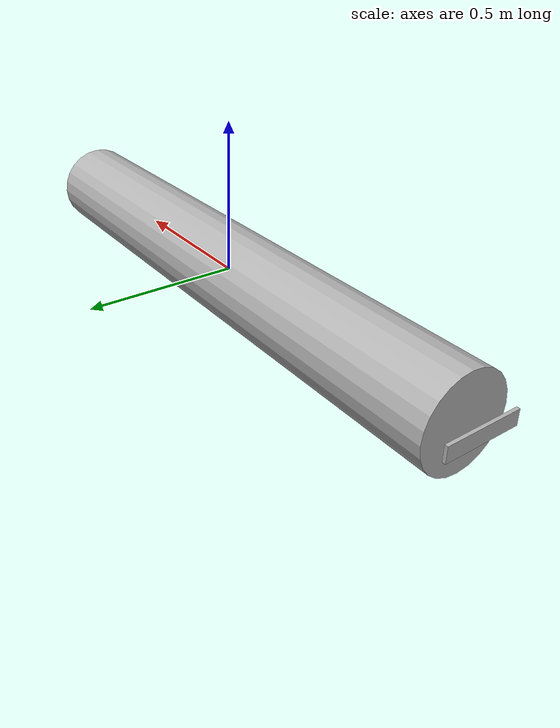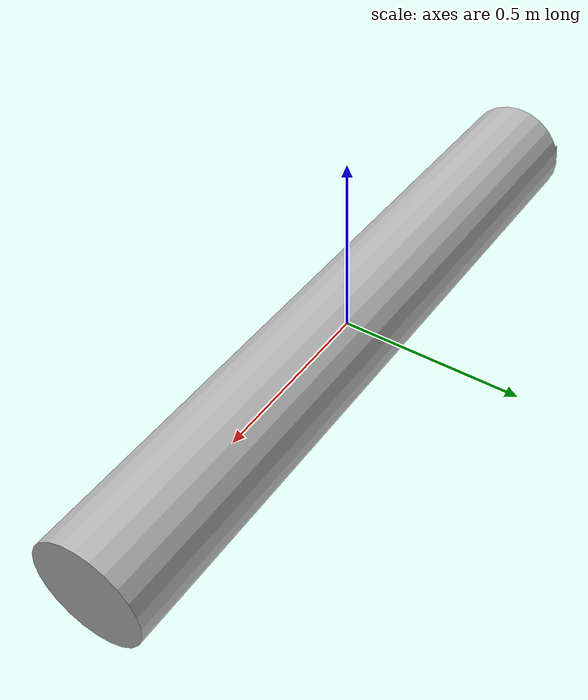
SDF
<?xml version="1.0" ?>
<sdf version="1.6">
  <world name="thruster">
    <plugin
      filename="gz-sim-apply-link-wrench-system"
      name="gz::sim::systems::ApplyLinkWrench">
    </plugin>

    <physics name="fast" type="none">
      <!-- Zero to run as fast as possible -->
      <real_time_factor>0</real_time_factor>
    </physics>

    <!-- prevent sinking -->
    <gravity>0 0 0</gravity>

    <plugin
      filename="gz-sim-physics-system"
      name="gz::sim::systems::Physics">
    </plugin>
    <plugin
      filename="gz-sim-scene-broadcaster-system"
      name="gz::sim::systems::SceneBroadcaster">
    </plugin>

    <light type="directional" name="sun">
      <cast_shadows>true</cast_shadows>
      <pose>0 0 10 0 0 0</pose>
      <diffuse>1 1 1 1</diffuse>
      <specular>0.5 0.5 0.5 1</specular>
      <attenuation>
        <range>1000</range>
        <constant>0.9</constant>
        <linear>0.01</linear>
        <quadratic>0.001</quadratic>
      </attenuation>
      <direction>-0.5 0.1 -0.9</direction>
    </light>

    <model name="sub">

      <link name="body">
        <pose>0 0 0   0 1.57 0</pose>
        <inertial>
          <mass>100</mass>
          <inertia>
            <ixx>33.89</ixx>
            <ixy>0</ixy>
            <ixz>0</ixz>
            <iyy>33.89</iyy>
            <iyz>0</iyz>
            <izz>1.125</izz>
          </inertia>
        </inertial>
        <visual name="visual">
          <geometry>
            <cylinder>
              <length>2</length>
              <radius>0.15</radius>
            </cylinder>
          </geometry>
        </visual>
      </link>

      <link name="propeller">
        <pose>-1.05 0 0 0 0 0</pose>
        <inertial>
          <mass>0.1</mass>
          <inertia>
            <ixx>0.000354167</ixx>
            <ixy>0</ixy>
            <ixz>0</ixz>
            <iyy>0.000021667</iyy>
            <iyz>0</iyz>
            <izz>0.000334167</izz>
          </inertia>
        </inertial>
        <visual name="visual">
          <geometry>
            <box>
              <size>0.01 0.25 0.05</size>
            </box>
          </geometry>
        </visual>
      </link>

      <joint name="propeller_joint" type="revolute">
        <parent>body</parent>
        <child>propeller</child>
        <axis>
          <xyz>1 0 0</xyz>
          <limit>
            <lower>-1e+12</lower>
            <upper>1e+12</upper>
            <effort>1e6</effort>
            <velocity>1e6</velocity>
          </limit>
        </axis>
      </joint>

      <plugin
        filename="gz-sim-thruster-system"
        name="gz::sim::systems::Thruster">
        <namespace>lowbattery</namespace>
        <joint_name>propeller_joint</joint_name>
        <thrust_coefficient>0.005</thrust_coefficient>
        <fluid_density>950</fluid_density>
        <propeller_diameter>0.25</propeller_diameter>
        <velocity_control>true</velocity_control>
        <max_thrust_cmd>300</max_thrust_cmd>
        <min_thrust_cmd>0</min_thrust_cmd>
        <topic>thrust</topic>
      </plugin>

      <plugin filename="gz-sim-linearbatteryplugin-system"
      name="gz::sim::systems::LinearBatteryPlugin">
      <battery_name>linear_battery</battery_name>
      <voltage>14.4</voltage>
      <open_circuit_voltage_constant_coef>14.4</open_circuit_voltage_constant_coef>
      <fix_issue_225>true</fix_issue_225>
      <!-- Initial charge in Ah -->
      <initial_charge>0.00005</initial_charge>
      <capacity>400</capacity>
      <!-- 190mOhm / 62 -->
      <resistance>0.003064</resistance>
      <!-- Power consumption: 14.4V * 2 A -->
      <power_load>28.8</power_load>
      <!-- Recharging the battery -->
      <!-- Charging time: 400/( (15 + 4) * 0.5 ) = 42.1 -->
      <enable_recharge>true</enable_recharge>
      <recharge_by_topic>true</recharge_by_topic>
      <charging_time>42.1</charging_time>
    </plugin>
    </model>

  </world>
</sdf>
